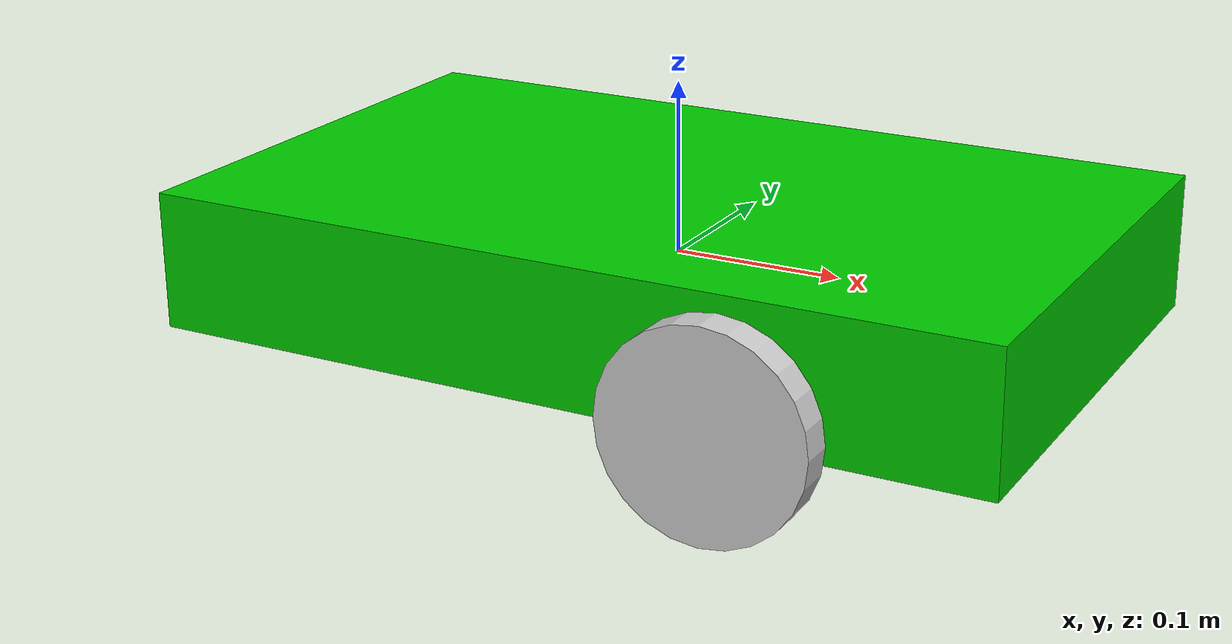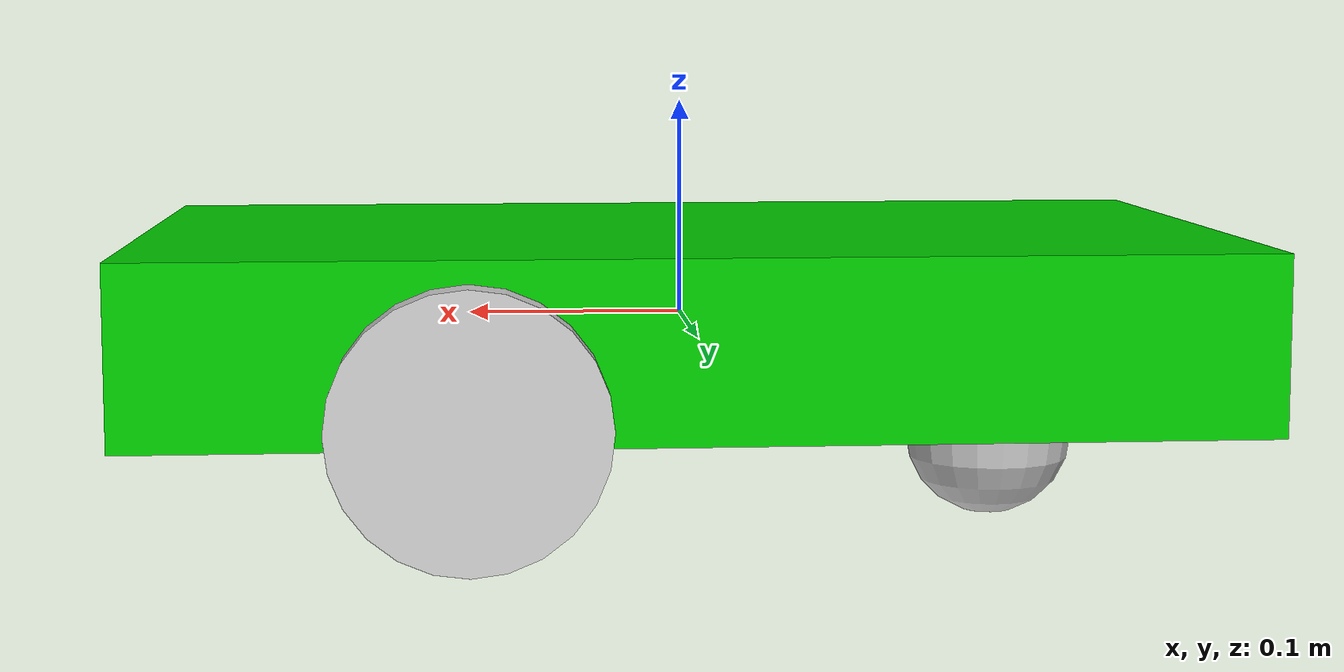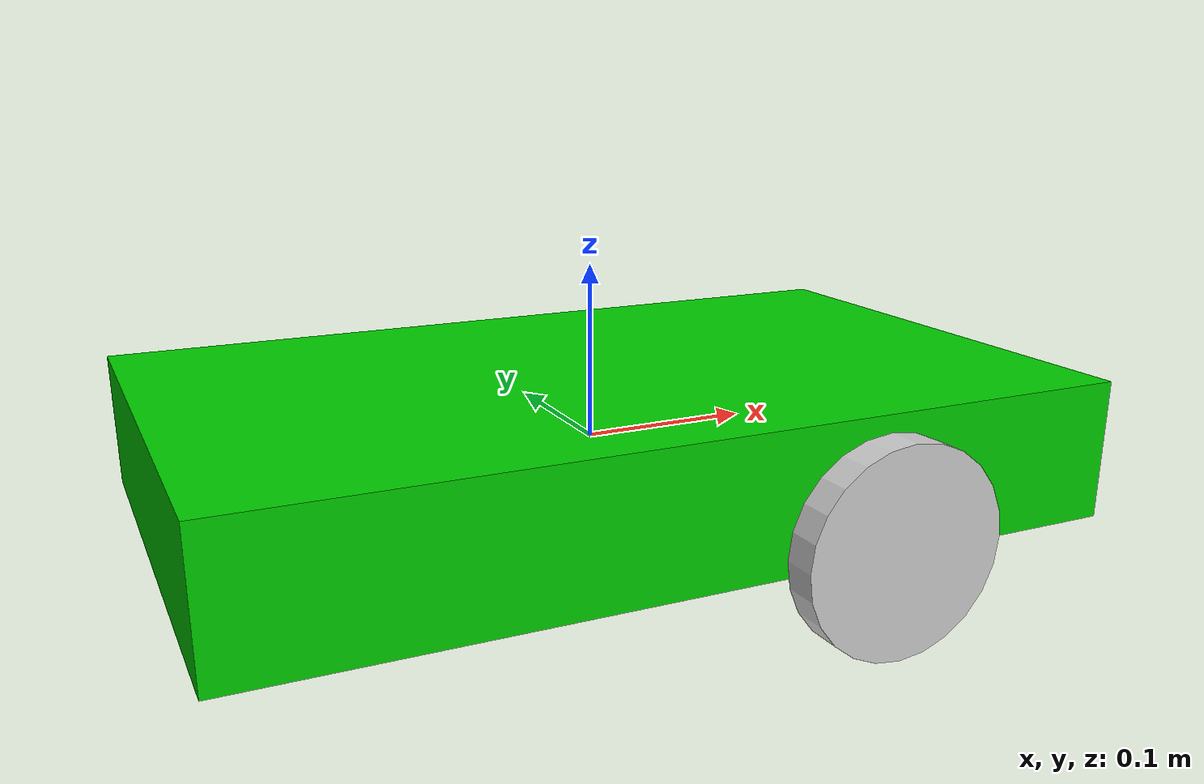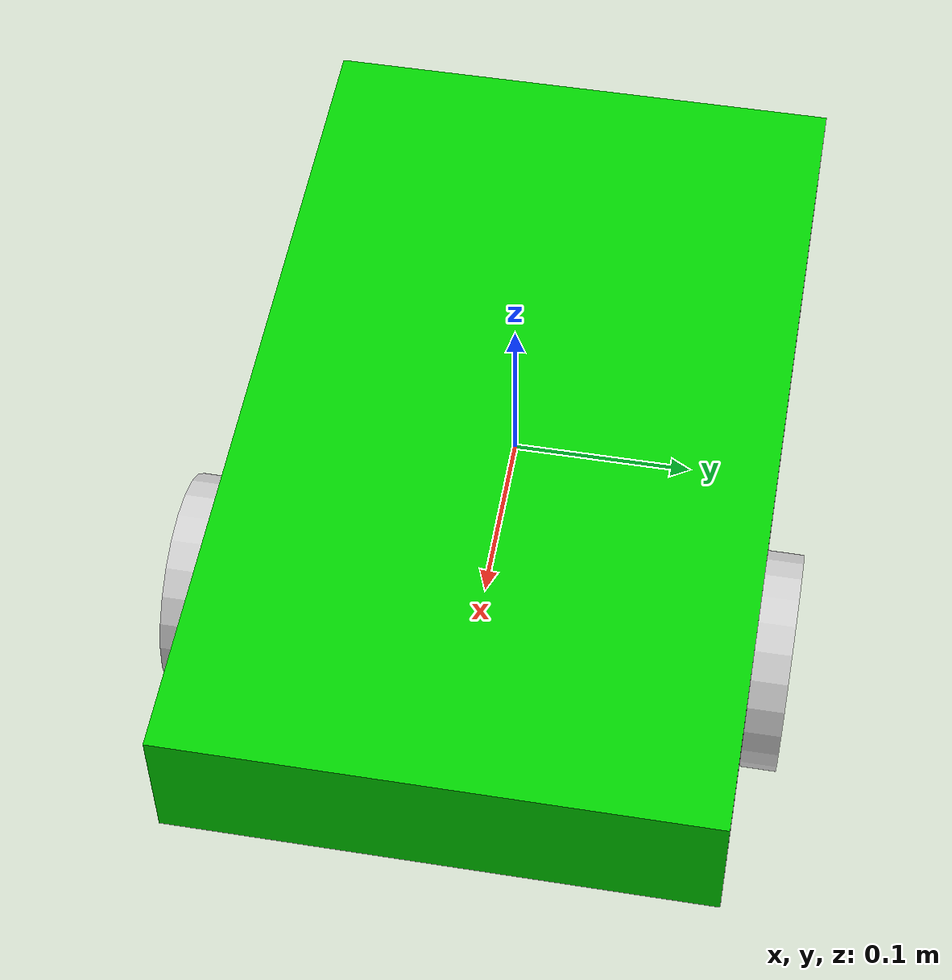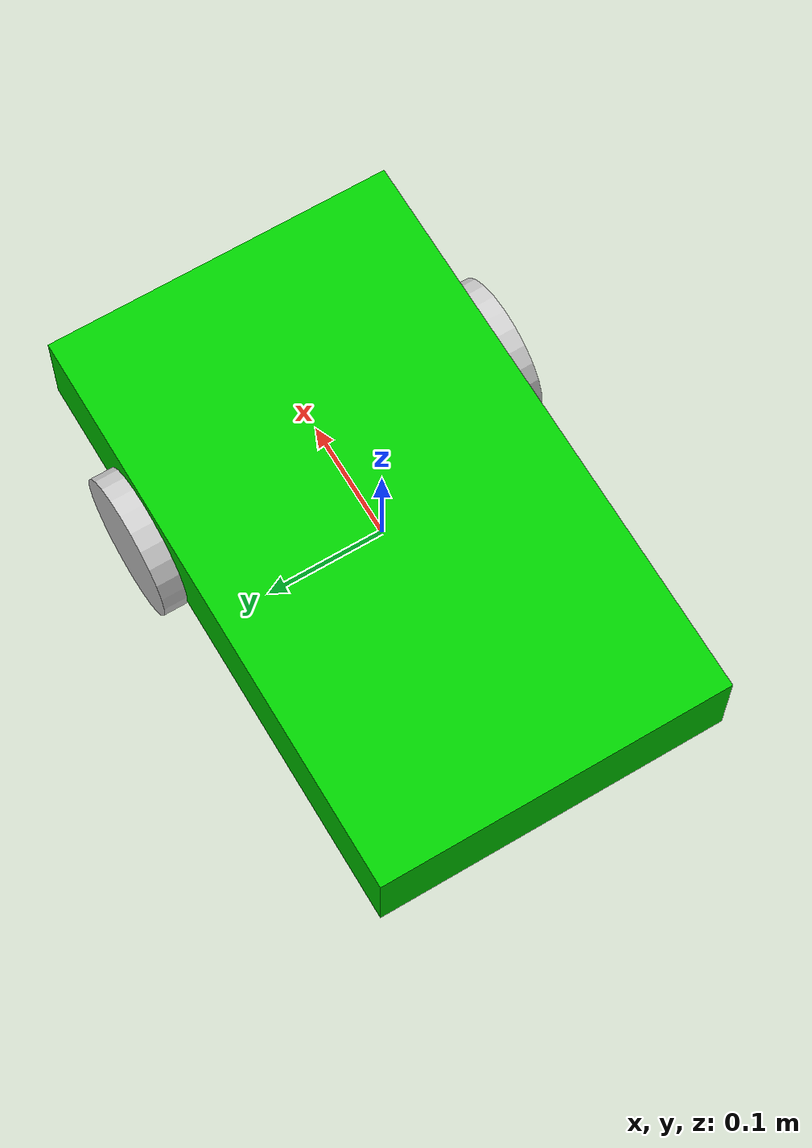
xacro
<?xml version="1.0"?>
<robot name="mobile_robot">

    <material name="green">
        <color rgba="0.0 0.8 0.0 1.0"/>
    </material>

    <material name="grey">
        <color rgba="0.8 0.8 0.8 1.0"/>
    </material>

    <link name="base_link">
        <visual>
            <geometry>
                <box size="0.5 0.3 0.08"/>
            </geometry>
            <origin xyz="0.0 0.0 0.0" rpy="0.0 0.0 0.0"/>
            <material name="green"/>
        </visual>
    </link>

    <link name="right_wheel_link">
        <visual>
            <geometry>
                <cylinder radius="0.06" length="0.02"/>
            </geometry>
            <origin xyz="0.0 0.0 0.0" rpy="0.0 0.0 0.0"/>
            <material name="grey"/>
        </visual>
    </link>

    <link name="left_wheel_link">
        <visual>
            <geometry>
                <cylinder radius="0.06" length="0.02"/>
            </geometry>
            <origin xyz="0.0 0.0 0.0" rpy="0.0 0.0 0.0"/>
            <material name="grey"/>
        </visual>
    </link>

    <link name="caster_wheel">
        <visual>
            <geometry>
                <sphere radius="0.04"/>
            </geometry>
            <origin xyz="0.0 0.0 0.0" rpy="0.0 0.0 0.0"/>
            <material name="grey"/>
        </visual>
    </link>

    <joint name="base_right_wheel_joint" type="continuous">
        <parent link="base_link"/>
        <child link="right_wheel_link"/>
        <axis xyz="0 0 1"/>
        <origin xyz="0.1 0.16 -0.03" rpy="1.5708 0.0 0.0"/>
    </joint>

    <joint name="base_left_wheel_joint" type="continuous">
        <parent link="base_link"/>
        <child link="left_wheel_link"/>
        <axis xyz="0 0 1"/>
        <origin xyz="0.1 -0.16 -0.03" rpy="1.5708 0.0 0.0"/>
    </joint>

    <joint name="base_caster_wheel_joint" type="fixed">
        <parent link="base_link"/>
        <child link="caster_wheel"/>
        <axis xyz="0 0 1"/>
        <origin xyz="-0.15 0.0 -0.06" rpy="0.0 0.0 0.0"/>
    </joint>

</robot>
